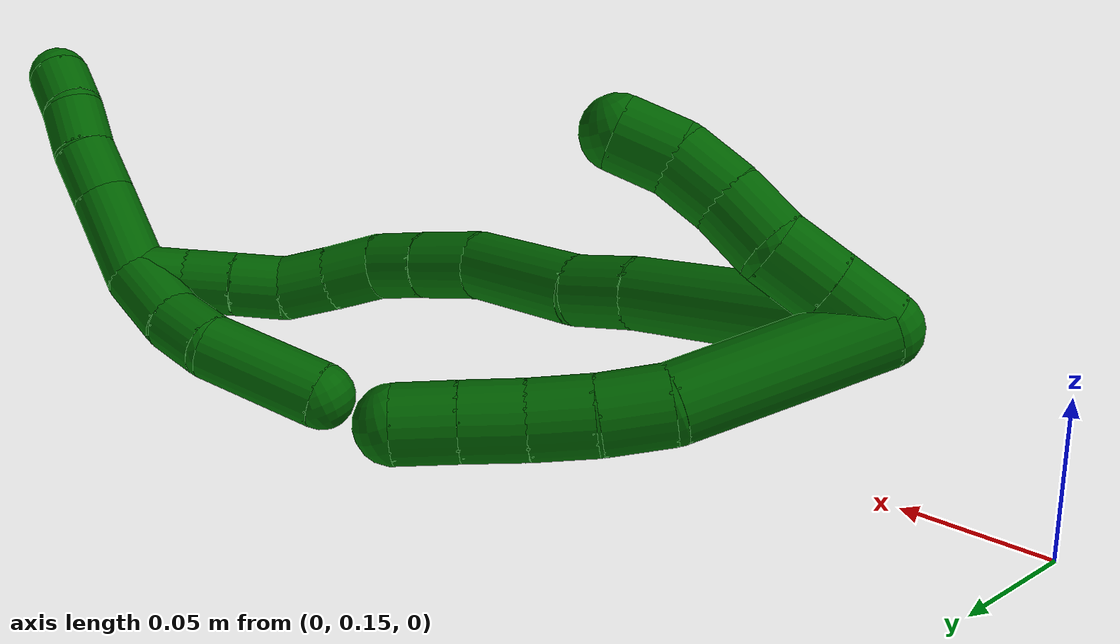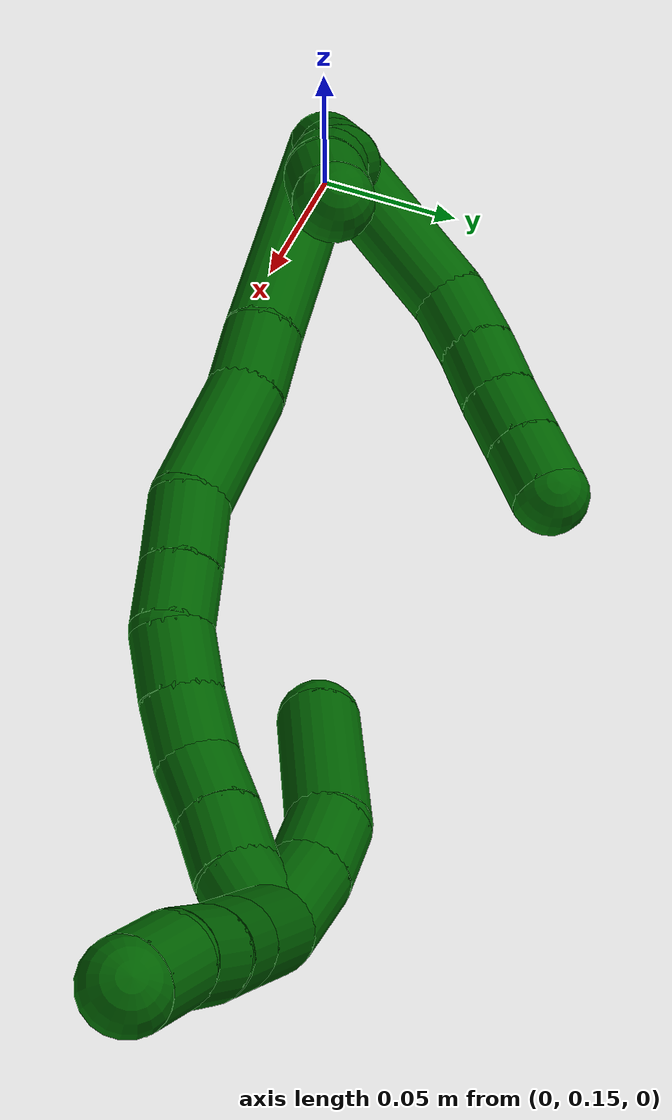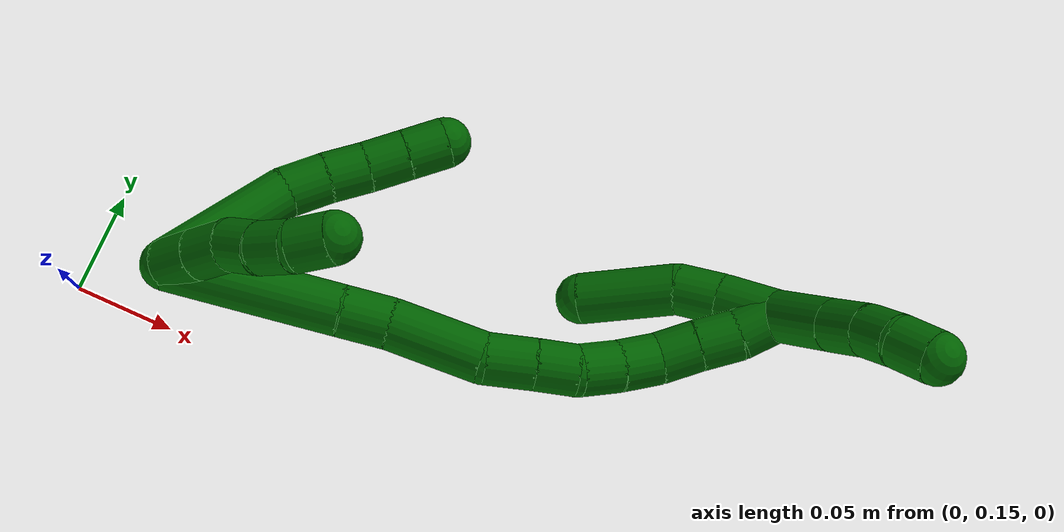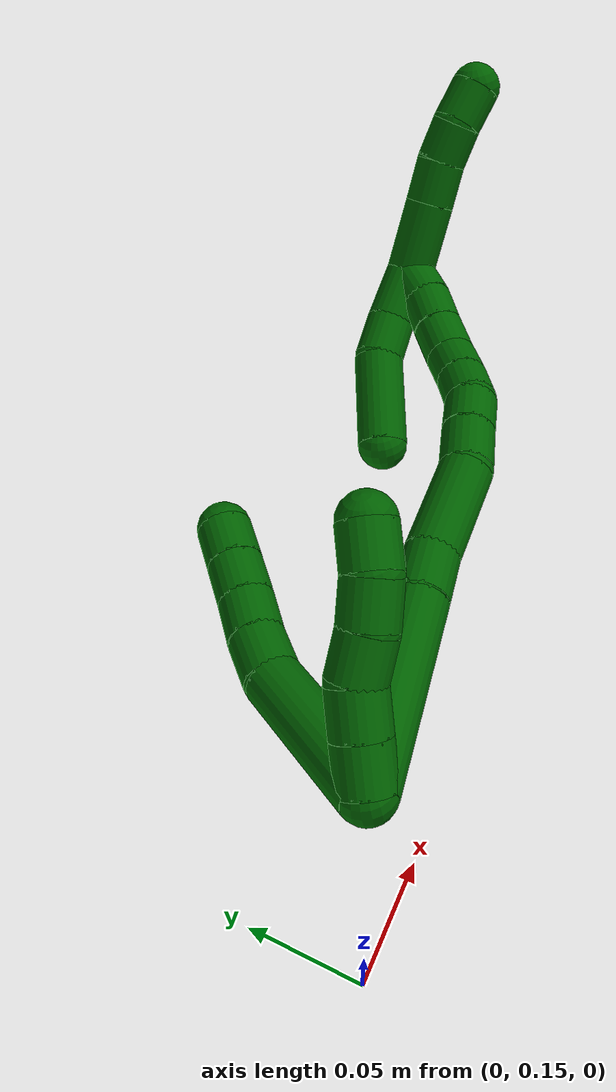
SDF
<sdf version="1.7">
 <world name="default">
  <model name="6">
   <static>0</static>
   <link name="6">
    <collision name="collision-cylinder-e_1_2_8">
     <pose>0.016515 0.029332 0.003978 -1.43599 0.508918 -0.446816</pose>
     <geometry><cylinder><radius>0.0125</radius><length>0.067792</length></cylinder></geometry>
     <surface>
      <friction><ode><mu>1.16</mu><mu2>1.16</mu2><slip1>0</slip1><slip2>0</slip2></ode></friction>
      <contact><ode><kp>1e+06</kp><kd>1</kd><max_vel>0</max_vel><min_depth>0.001</min_depth></ode></contact>
     </surface>
    </collision>
    <visual name="visual-cylinder-e_1_2_8">
     <pose>0.016515 0.029332 0.003978 -1.43599 0.508918 -0.446816</pose>
     <geometry><cylinder><radius>0.0125</radius><length>0.067792</length></cylinder></geometry>
     <material><ambient>0 0.392157 0.003922 1</ambient></material>
    </visual>
    <collision name="collision-cylinder-e_2_8_9">
     <pose>0.040237 0.066334 0.0105 -1.25066 0.728244 -0.53703</pose>
     <geometry><cylinder><radius>0.0125</radius><length>0.021655</length></cylinder></geometry>
     <surface>
      <friction><ode><mu>1.16</mu><mu2>1.16</mu2><slip1>0</slip1><slip2>0</slip2></ode></friction>
      <contact><ode><kp>1e+06</kp><kd>1</kd><max_vel>0</max_vel><min_depth>0.001</min_depth></ode></contact>
     </surface>
    </collision>
    <visual name="visual-cylinder-e_2_8_9">
     <pose>0.040237 0.066334 0.0105 -1.25066 0.728244 -0.53703</pose>
     <geometry><cylinder><radius>0.0125</radius><length>0.021655</length></cylinder></geometry>
     <material><ambient>0 0.392157 0.003922 1</ambient></material>
    </visual>
    <collision name="collision-cylinder-e_3_9_10">
     <pose>0.054715 0.080401 0.015904 -1.15019 0.803925 -0.537751</pose>
     <geometry><cylinder><radius>0.0125</radius><length>0.020198</length></cylinder></geometry>
     <surface>
      <friction><ode><mu>1.16</mu><mu2>1.16</mu2><slip1>0</slip1><slip2>0</slip2></ode></friction>
      <contact><ode><kp>1e+06</kp><kd>1</kd><max_vel>0</max_vel><min_depth>0.001</min_depth></ode></contact>
     </surface>
    </collision>
    <visual name="visual-cylinder-e_3_9_10">
     <pose>0.054715 0.080401 0.015904 -1.15019 0.803925 -0.537751</pose>
     <geometry><cylinder><radius>0.0125</radius><length>0.020198</length></cylinder></geometry>
     <material><ambient>0 0.392157 0.003922 1</ambient></material>
    </visual>
    <collision name="collision-cylinder-e_4_10_11">
     <pose>0.068933 0.093272 0.022172 -1.08643 0.75947 -0.472948</pose>
     <geometry><cylinder><radius>0.0125</radius><length>0.020176</length></cylinder></geometry>
     <surface>
      <friction><ode><mu>1.16</mu><mu2>1.16</mu2><slip1>0</slip1><slip2>0</slip2></ode></friction>
      <contact><ode><kp>1e+06</kp><kd>1</kd><max_vel>0</max_vel><min_depth>0.001</min_depth></ode></contact>
     </surface>
    </collision>
    <visual name="visual-cylinder-e_4_10_11">
     <pose>0.068933 0.093272 0.022172 -1.08643 0.75947 -0.472948</pose>
     <geometry><cylinder><radius>0.0125</radius><length>0.020176</length></cylinder></geometry>
     <material><ambient>0 0.392157 0.003922 1</ambient></material>
    </visual>
    <collision name="collision-cylinder-e_5_11_6">
     <pose>0.082853 0.106258 0.028861 -1.10396 0.763057 -0.484425</pose>
     <geometry><cylinder><radius>0.0125</radius><length>0.020179</length></cylinder></geometry>
     <surface>
      <friction><ode><mu>1.16</mu><mu2>1.16</mu2><slip1>0</slip1><slip2>0</slip2></ode></friction>
      <contact><ode><kp>1e+06</kp><kd>1</kd><max_vel>0</max_vel><min_depth>0.001</min_depth></ode></contact>
     </surface>
    </collision>
    <visual name="visual-cylinder-e_5_11_6">
     <pose>0.082853 0.106258 0.028861 -1.10396 0.763057 -0.484425</pose>
     <geometry><cylinder><radius>0.0125</radius><length>0.020179</length></cylinder></geometry>
     <material><ambient>0 0.392157 0.003922 1</ambient></material>
    </visual>
    <collision name="collision-cylinder-e_1_2_12">
     <pose>0.004969 0.002244 0.008383 -0.261567 0.520029 -0.069957</pose>
     <geometry><cylinder><radius>0.0125</radius><length>0.02</length></cylinder></geometry>
     <surface>
      <friction><ode><mu>1.16</mu><mu2>1.16</mu2><slip1>0</slip1><slip2>0</slip2></ode></friction>
      <contact><ode><kp>1e+06</kp><kd>1</kd><max_vel>0</max_vel><min_depth>0.001</min_depth></ode></contact>
     </surface>
    </collision>
    <visual name="visual-cylinder-e_1_2_12">
     <pose>0.004969 0.002244 0.008383 -0.261567 0.520029 -0.069957</pose>
     <geometry><cylinder><radius>0.0125</radius><length>0.02</length></cylinder></geometry>
     <material><ambient>0 0.392157 0.003922 1</ambient></material>
    </visual>
    <collision name="collision-cylinder-e_2_12_13">
     <pose>0.014969 0.006681 0.025125 -0.256542 0.527199 -0.06959</pose>
     <geometry><cylinder><radius>0.0125</radius><length>0.02</length></cylinder></geometry>
     <surface>
      <friction><ode><mu>1.16</mu><mu2>1.16</mu2><slip1>0</slip1><slip2>0</slip2></ode></friction>
      <contact><ode><kp>1e+06</kp><kd>1</kd><max_vel>0</max_vel><min_depth>0.001</min_depth></ode></contact>
     </surface>
    </collision>
    <visual name="visual-cylinder-e_2_12_13">
     <pose>0.014969 0.006681 0.025125 -0.256542 0.527199 -0.06959</pose>
     <geometry><cylinder><radius>0.0125</radius><length>0.02</length></cylinder></geometry>
     <material><ambient>0 0.392157 0.003922 1</ambient></material>
    </visual>
    <collision name="collision-cylinder-e_3_13_14">
     <pose>0.025843 0.00782 0.041532 0.130238 0.623944 0.042056</pose>
     <geometry><cylinder><radius>0.0125</radius><length>0.02</length></cylinder></geometry>
     <surface>
      <friction><ode><mu>1.16</mu><mu2>1.16</mu2><slip1>0</slip1><slip2>0</slip2></ode></friction>
      <contact><ode><kp>1e+06</kp><kd>1</kd><max_vel>0</max_vel><min_depth>0.001</min_depth></ode></contact>
     </surface>
    </collision>
    <visual name="visual-cylinder-e_3_13_14">
     <pose>0.025843 0.00782 0.041532 0.130238 0.623944 0.042056</pose>
     <geometry><cylinder><radius>0.0125</radius><length>0.02</length></cylinder></geometry>
     <material><ambient>0 0.392157 0.003922 1</ambient></material>
    </visual>
    <collision name="collision-cylinder-e_4_14_15">
     <pose>0.037621 0.007438 0.057598 -0.083598 0.635492 -0.027509</pose>
     <geometry><cylinder><radius>0.0125</radius><length>0.02</length></cylinder></geometry>
     <surface>
      <friction><ode><mu>1.16</mu><mu2>1.16</mu2><slip1>0</slip1><slip2>0</slip2></ode></friction>
      <contact><ode><kp>1e+06</kp><kd>1</kd><max_vel>0</max_vel><min_depth>0.001</min_depth></ode></contact>
     </surface>
    </collision>
    <visual name="visual-cylinder-e_4_14_15">
     <pose>0.037621 0.007438 0.057598 -0.083598 0.635492 -0.027509</pose>
     <geometry><cylinder><radius>0.0125</radius><length>0.02</length></cylinder></geometry>
     <material><ambient>0 0.392157 0.003922 1</ambient></material>
    </visual>
    <collision name="collision-cylinder-e_5_15_5">
     <pose>0.050081 0.011306 0.072489 -0.435375 0.710817 -0.163833</pose>
     <geometry><cylinder><radius>0.0125</radius><length>0.02</length></cylinder></geometry>
     <surface>
      <friction><ode><mu>1.16</mu><mu2>1.16</mu2><slip1>0</slip1><slip2>0</slip2></ode></friction>
      <contact><ode><kp>1e+06</kp><kd>1</kd><max_vel>0</max_vel><min_depth>0.001</min_depth></ode></contact>
     </surface>
    </collision>
    <visual name="visual-cylinder-e_5_15_5">
     <pose>0.050081 0.011306 0.072489 -0.435375 0.710817 -0.163833</pose>
     <geometry><cylinder><radius>0.0125</radius><length>0.02</length></cylinder></geometry>
     <material><ambient>0 0.392157 0.003922 1</ambient></material>
    </visual>
    <collision name="collision-cylinder-e_1_2_16">
     <pose>0.040136 0.00564 0.011433 -0.458243 1.26324 -0.337986</pose>
     <geometry><cylinder><radius>0.0125</radius><length>0.084224</length></cylinder></geometry>
     <surface>
      <friction><ode><mu>1.16</mu><mu2>1.16</mu2><slip1>0</slip1><slip2>0</slip2></ode></friction>
      <contact><ode><kp>1e+06</kp><kd>1</kd><max_vel>0</max_vel><min_depth>0.001</min_depth></ode></contact>
     </surface>
    </collision>
    <visual name="visual-cylinder-e_1_2_16">
     <pose>0.040136 0.00564 0.011433 -0.458243 1.26324 -0.337986</pose>
     <geometry><cylinder><radius>0.0125</radius><length>0.084224</length></cylinder></geometry>
     <material><ambient>0 0.392157 0.003922 1</ambient></material>
    </visual>
    <collision name="collision-cylinder-e_2_16_17">
     <pose>0.091794 0.013323 0.025217 -0.715939 1.3068 -0.557858</pose>
     <geometry><cylinder><radius>0.0125</radius><length>0.023871</length></cylinder></geometry>
     <surface>
      <friction><ode><mu>1.16</mu><mu2>1.16</mu2><slip1>0</slip1><slip2>0</slip2></ode></friction>
      <contact><ode><kp>1e+06</kp><kd>1</kd><max_vel>0</max_vel><min_depth>0.001</min_depth></ode></contact>
     </surface>
    </collision>
    <visual name="visual-cylinder-e_2_16_17">
     <pose>0.091794 0.013323 0.025217 -0.715939 1.3068 -0.557858</pose>
     <geometry><cylinder><radius>0.0125</radius><length>0.023871</length></cylinder></geometry>
     <material><ambient>0 0.392157 0.003922 1</ambient></material>
    </visual>
    <collision name="collision-cylinder-e_3_17_18">
     <pose>0.125489 0.015715 0.034524 -0.049959 1.26637 -0.036674</pose>
     <geometry><cylinder><radius>0.0125</radius><length>0.046485</length></cylinder></geometry>
     <surface>
      <friction><ode><mu>1.16</mu><mu2>1.16</mu2><slip1>0</slip1><slip2>0</slip2></ode></friction>
      <contact><ode><kp>1e+06</kp><kd>1</kd><max_vel>0</max_vel><min_depth>0.001</min_depth></ode></contact>
     </surface>
    </collision>
    <visual name="visual-cylinder-e_3_17_18">
     <pose>0.125489 0.015715 0.034524 -0.049959 1.26637 -0.036674</pose>
     <geometry><cylinder><radius>0.0125</radius><length>0.046485</length></cylinder></geometry>
     <material><ambient>0 0.392157 0.003922 1</ambient></material>
    </visual>
    <collision name="collision-cylinder-e_4_18_19">
     <pose>0.158789 0.019659 0.044237 -0.917166 1.18418 -0.641181</pose>
     <geometry><cylinder><radius>0.0125</radius><length>0.024026</length></cylinder></geometry>
     <surface>
      <friction><ode><mu>1.16</mu><mu2>1.16</mu2><slip1>0</slip1><slip2>0</slip2></ode></friction>
      <contact><ode><kp>1e+06</kp><kd>1</kd><max_vel>0</max_vel><min_depth>0.001</min_depth></ode></contact>
     </surface>
    </collision>
    <visual name="visual-cylinder-e_4_18_19">
     <pose>0.158789 0.019659 0.044237 -0.917166 1.18418 -0.641181</pose>
     <geometry><cylinder><radius>0.0125</radius><length>0.024026</length></cylinder></geometry>
     <material><ambient>0 0.392157 0.003922 1</ambient></material>
    </visual>
    <collision name="collision-cylinder-e_5_19_20">
     <pose>0.179428 0.026154 0.049052 -0.952907 1.213 -0.687636</pose>
     <geometry><cylinder><radius>0.0125</radius><length>0.020312</length></cylinder></geometry>
     <surface>
      <friction><ode><mu>1.16</mu><mu2>1.16</mu2><slip1>0</slip1><slip2>0</slip2></ode></friction>
      <contact><ode><kp>1e+06</kp><kd>1</kd><max_vel>0</max_vel><min_depth>0.001</min_depth></ode></contact>
     </surface>
    </collision>
    <visual name="visual-cylinder-e_5_19_20">
     <pose>0.179428 0.026154 0.049052 -0.952907 1.213 -0.687636</pose>
     <geometry><cylinder><radius>0.0125</radius><length>0.020312</length></cylinder></geometry>
     <material><ambient>0 0.392157 0.003922 1</ambient></material>
    </visual>
    <collision name="collision-cylinder-e_6_20_21">
     <pose>0.197421 0.034722 0.052058 -1.40547 0.975194 -0.8443</pose>
     <geometry><cylinder><radius>0.0125</radius><length>0.020488</length></cylinder></geometry>
     <surface>
      <friction><ode><mu>1.16</mu><mu2>1.16</mu2><slip1>0</slip1><slip2>0</slip2></ode></friction>
      <contact><ode><kp>1e+06</kp><kd>1</kd><max_vel>0</max_vel><min_depth>0.001</min_depth></ode></contact>
     </surface>
    </collision>
    <visual name="visual-cylinder-e_6_20_21">
     <pose>0.197421 0.034722 0.052058 -1.40547 0.975194 -0.8443</pose>
     <geometry><cylinder><radius>0.0125</radius><length>0.020488</length></cylinder></geometry>
     <material><ambient>0 0.392157 0.003922 1</ambient></material>
    </visual>
    <collision name="collision-cylinder-e_7_21_22">
     <pose>0.213862 0.046547 0.054406 -1.34679 0.900253 -0.735896</pose>
     <geometry><cylinder><radius>0.0125</radius><length>0.020323</length></cylinder></geometry>
     <surface>
      <friction><ode><mu>1.16</mu><mu2>1.16</mu2><slip1>0</slip1><slip2>0</slip2></ode></friction>
      <contact><ode><kp>1e+06</kp><kd>1</kd><max_vel>0</max_vel><min_depth>0.001</min_depth></ode></contact>
     </surface>
    </collision>
    <visual name="visual-cylinder-e_7_21_22">
     <pose>0.213862 0.046547 0.054406 -1.34679 0.900253 -0.735896</pose>
     <geometry><cylinder><radius>0.0125</radius><length>0.020323</length></cylinder></geometry>
     <material><ambient>0 0.392157 0.003922 1</ambient></material>
    </visual>
    <collision name="collision-cylinder-e_8_22_23">
     <pose>0.228605 0.058669 0.060231 -0.93292 0.740157 -0.385827</pose>
     <geometry><cylinder><radius>0.0125</radius><length>0.020112</length></cylinder></geometry>
     <surface>
      <friction><ode><mu>1.16</mu><mu2>1.16</mu2><slip1>0</slip1><slip2>0</slip2></ode></friction>
      <contact><ode><kp>1e+06</kp><kd>1</kd><max_vel>0</max_vel><min_depth>0.001</min_depth></ode></contact>
     </surface>
    </collision>
    <visual name="visual-cylinder-e_8_22_23">
     <pose>0.228605 0.058669 0.060231 -0.93292 0.740157 -0.385827</pose>
     <geometry><cylinder><radius>0.0125</radius><length>0.020112</length></cylinder></geometry>
     <material><ambient>0 0.392157 0.003922 1</ambient></material>
    </visual>
    <collision name="collision-cylinder-e_9_23_24">
     <pose>0.242506 0.070298 0.068892 -0.928256 0.788458 -0.410638</pose>
     <geometry><cylinder><radius>0.0125</radius><length>0.020073</length></cylinder></geometry>
     <surface>
      <friction><ode><mu>1.16</mu><mu2>1.16</mu2><slip1>0</slip1><slip2>0</slip2></ode></friction>
      <contact><ode><kp>1e+06</kp><kd>1</kd><max_vel>0</max_vel><min_depth>0.001</min_depth></ode></contact>
     </surface>
    </collision>
    <visual name="visual-cylinder-e_9_23_24">
     <pose>0.242506 0.070298 0.068892 -0.928256 0.788458 -0.410638</pose>
     <geometry><cylinder><radius>0.0125</radius><length>0.020073</length></cylinder></geometry>
     <material><ambient>0 0.392157 0.003922 1</ambient></material>
    </visual>
    <collision name="collision-cylinder-e_10_24_1">
     <pose>0.255264 0.082749 0.077927 -0.955597 0.59625 -0.315587</pose>
     <geometry><cylinder><radius>0.0125</radius><length>0.020087</length></cylinder></geometry>
     <surface>
      <friction><ode><mu>1.16</mu><mu2>1.16</mu2><slip1>0</slip1><slip2>0</slip2></ode></friction>
      <contact><ode><kp>1e+06</kp><kd>1</kd><max_vel>0</max_vel><min_depth>0.001</min_depth></ode></contact>
     </surface>
    </collision>
    <visual name="visual-cylinder-e_10_24_1">
     <pose>0.255264 0.082749 0.077927 -0.955597 0.59625 -0.315587</pose>
     <geometry><cylinder><radius>0.0125</radius><length>0.020087</length></cylinder></geometry>
     <material><ambient>0 0.392157 0.003922 1</ambient></material>
    </visual>
    <collision name="collision-cylinder-e_1_1_25">
     <pose>0.249994 0.091622 0.073389 -2.92171 -0.851018 2.66375</pose>
     <geometry><cylinder><radius>0.0125</radius><length>0.029018</length></cylinder></geometry>
     <surface>
      <friction><ode><mu>1.16</mu><mu2>1.16</mu2><slip1>0</slip1><slip2>0</slip2></ode></friction>
      <contact><ode><kp>1e+06</kp><kd>1</kd><max_vel>0</max_vel><min_depth>0.001</min_depth></ode></contact>
     </surface>
    </collision>
    <visual name="visual-cylinder-e_1_1_25">
     <pose>0.249994 0.091622 0.073389 -2.92171 -0.851018 2.66375</pose>
     <geometry><cylinder><radius>0.0125</radius><length>0.029018</length></cylinder></geometry>
     <material><ambient>0 0.392157 0.003922 1</ambient></material>
    </visual>
    <collision name="collision-cylinder-e_2_25_26">
     <pose>0.229525 0.093693 0.057957 3.13908 -1.00297 -3.13701</pose>
     <geometry><cylinder><radius>0.0125</radius><length>0.022676</length></cylinder></geometry>
     <surface>
      <friction><ode><mu>1.16</mu><mu2>1.16</mu2><slip1>0</slip1><slip2>0</slip2></ode></friction>
      <contact><ode><kp>1e+06</kp><kd>1</kd><max_vel>0</max_vel><min_depth>0.001</min_depth></ode></contact>
     </surface>
    </collision>
    <visual name="visual-cylinder-e_2_25_26">
     <pose>0.229525 0.093693 0.057957 3.13908 -1.00297 -3.13701</pose>
     <geometry><cylinder><radius>0.0125</radius><length>0.022676</length></cylinder></geometry>
     <material><ambient>0 0.392157 0.003922 1</ambient></material>
    </visual>
    <collision name="collision-cylinder-e_3_26_4">
     <pose>0.202272 0.08643 0.037103 2.68508 -0.822103 -2.16226</pose>
     <geometry><cylinder><radius>0.0125</radius><length>0.048306</length></cylinder></geometry>
     <surface>
      <friction><ode><mu>1.16</mu><mu2>1.16</mu2><slip1>0</slip1><slip2>0</slip2></ode></friction>
      <contact><ode><kp>1e+06</kp><kd>1</kd><max_vel>0</max_vel><min_depth>0.001</min_depth></ode></contact>
     </surface>
    </collision>
    <visual name="visual-cylinder-e_3_26_4">
     <pose>0.202272 0.08643 0.037103 2.68508 -0.822103 -2.16226</pose>
     <geometry><cylinder><radius>0.0125</radius><length>0.048306</length></cylinder></geometry>
     <material><ambient>0 0.392157 0.003922 1</ambient></material>
    </visual>
    <collision name="collision-cylinder-e_1_1_27">
     <pose>0.268568 0.084962 0.099033 0.273414 0.424904 0.05933</pose>
     <geometry><cylinder><radius>0.0125</radius><length>0.037183</length></cylinder></geometry>
     <surface>
      <friction><ode><mu>1.16</mu><mu2>1.16</mu2><slip1>0</slip1><slip2>0</slip2></ode></friction>
      <contact><ode><kp>1e+06</kp><kd>1</kd><max_vel>0</max_vel><min_depth>0.001</min_depth></ode></contact>
     </surface>
    </collision>
    <visual name="visual-cylinder-e_1_1_27">
     <pose>0.268568 0.084962 0.099033 0.273414 0.424904 0.05933</pose>
     <geometry><cylinder><radius>0.0125</radius><length>0.037183</length></cylinder></geometry>
     <material><ambient>0 0.392157 0.003922 1</ambient></material>
    </visual>
    <collision name="collision-cylinder-e_2_27_28">
     <pose>0.280726 0.077784 0.125014 0.26304 0.421758 0.056619</pose>
     <geometry><cylinder><radius>0.0125</radius><length>0.021957</length></cylinder></geometry>
     <surface>
      <friction><ode><mu>1.16</mu><mu2>1.16</mu2><slip1>0</slip1><slip2>0</slip2></ode></friction>
      <contact><ode><kp>1e+06</kp><kd>1</kd><max_vel>0</max_vel><min_depth>0.001</min_depth></ode></contact>
     </surface>
    </collision>
    <visual name="visual-cylinder-e_2_27_28">
     <pose>0.280726 0.077784 0.125014 0.26304 0.421758 0.056619</pose>
     <geometry><cylinder><radius>0.0125</radius><length>0.021957</length></cylinder></geometry>
     <material><ambient>0 0.392157 0.003922 1</ambient></material>
    </visual>
    <collision name="collision-cylinder-e_3_28_29">
     <pose>0.289367 0.071507 0.143135 0.410086 0.422885 0.089221</pose>
     <geometry><cylinder><radius>0.0125</radius><length>0.020204</length></cylinder></geometry>
     <surface>
      <friction><ode><mu>1.16</mu><mu2>1.16</mu2><slip1>0</slip1><slip2>0</slip2></ode></friction>
      <contact><ode><kp>1e+06</kp><kd>1</kd><max_vel>0</max_vel><min_depth>0.001</min_depth></ode></contact>
     </surface>
    </collision>
    <visual name="visual-cylinder-e_3_28_29">
     <pose>0.289367 0.071507 0.143135 0.410086 0.422885 0.089221</pose>
     <geometry><cylinder><radius>0.0125</radius><length>0.020204</length></cylinder></geometry>
     <material><ambient>0 0.392157 0.003922 1</ambient></material>
    </visual>
    <collision name="collision-cylinder-e_4_29_3">
     <pose>0.299886 0.064321 0.158911 0.447038 0.665097 0.156698</pose>
     <geometry><cylinder><radius>0.0125</radius><length>0.020655</length></cylinder></geometry>
     <surface>
      <friction><ode><mu>1.16</mu><mu2>1.16</mu2><slip1>0</slip1><slip2>0</slip2></ode></friction>
      <contact><ode><kp>1e+06</kp><kd>1</kd><max_vel>0</max_vel><min_depth>0.001</min_depth></ode></contact>
     </surface>
    </collision>
    <visual name="visual-cylinder-e_4_29_3">
     <pose>0.299886 0.064321 0.158911 0.447038 0.665097 0.156698</pose>
     <geometry><cylinder><radius>0.0125</radius><length>0.020655</length></cylinder></geometry>
     <material><ambient>0 0.392157 0.003922 1</ambient></material>
    </visual>
    <collision name="collision-sphere-3">
     <pose>0.306259 0.060808 0.166239 0 -0 0</pose>
     <geometry><sphere><radius>0.0125</radius></sphere></geometry>
     <surface>
      <friction><ode><mu>1.16</mu><mu2>1.16</mu2><slip1>0</slip1><slip2>0</slip2></ode></friction>
      <contact><ode><kp>1e+06</kp><kd>1</kd><max_vel>0</max_vel><min_depth>0.001</min_depth></ode></contact>
     </surface>
    </collision>
    <visual name="visual-sphere-3">
     <pose>0.306259 0.060808 0.166239 0 -0 0</pose>
     <geometry><sphere><radius>0.0125</radius></sphere></geometry>
     <material><ambient>0 0.392157 0.003922 1</ambient></material>
    </visual>
    <collision name="collision-sphere-29">
     <pose>0.293512 0.067834 0.151583 0 -0 0</pose>
     <geometry><sphere><radius>0.0125</radius></sphere></geometry>
     <surface>
      <friction><ode><mu>1.16</mu><mu2>1.16</mu2><slip1>0</slip1><slip2>0</slip2></ode></friction>
      <contact><ode><kp>1e+06</kp><kd>1</kd><max_vel>0</max_vel><min_depth>0.001</min_depth></ode></contact>
     </surface>
    </collision>
    <visual name="visual-sphere-29">
     <pose>0.293512 0.067834 0.151583 0 -0 0</pose>
     <geometry><sphere><radius>0.0125</radius></sphere></geometry>
     <material><ambient>0 0.392157 0.003922 1</ambient></material>
    </visual>
    <collision name="collision-sphere-28">
     <pose>0.285221 0.07518 0.134686 0 -0 0</pose>
     <geometry><sphere><radius>0.0125</radius></sphere></geometry>
     <surface>
      <friction><ode><mu>1.16</mu><mu2>1.16</mu2><slip1>0</slip1><slip2>0</slip2></ode></friction>
      <contact><ode><kp>1e+06</kp><kd>1</kd><max_vel>0</max_vel><min_depth>0.001</min_depth></ode></contact>
     </surface>
    </collision>
    <visual name="visual-sphere-28">
     <pose>0.285221 0.07518 0.134686 0 -0 0</pose>
     <geometry><sphere><radius>0.0125</radius></sphere></geometry>
     <material><ambient>0 0.392157 0.003922 1</ambient></material>
    </visual>
    <collision name="collision-sphere-27">
     <pose>0.276232 0.080389 0.115342 0 -0 0</pose>
     <geometry><sphere><radius>0.0125</radius></sphere></geometry>
     <surface>
      <friction><ode><mu>1.16</mu><mu2>1.16</mu2><slip1>0</slip1><slip2>0</slip2></ode></friction>
      <contact><ode><kp>1e+06</kp><kd>1</kd><max_vel>0</max_vel><min_depth>0.001</min_depth></ode></contact>
     </surface>
    </collision>
    <visual name="visual-sphere-27">
     <pose>0.276232 0.080389 0.115342 0 -0 0</pose>
     <geometry><sphere><radius>0.0125</radius></sphere></geometry>
     <material><ambient>0 0.392157 0.003922 1</ambient></material>
    </visual>
    <collision name="collision-sphere-4">
     <pose>0.184578 0.079183 0.022346 0 -0 0</pose>
     <geometry><sphere><radius>0.0125</radius></sphere></geometry>
     <surface>
      <friction><ode><mu>1.16</mu><mu2>1.16</mu2><slip1>0</slip1><slip2>0</slip2></ode></friction>
      <contact><ode><kp>1e+06</kp><kd>1</kd><max_vel>0</max_vel><min_depth>0.001</min_depth></ode></contact>
     </surface>
    </collision>
    <visual name="visual-sphere-4">
     <pose>0.184578 0.079183 0.022346 0 -0 0</pose>
     <geometry><sphere><radius>0.0125</radius></sphere></geometry>
     <material><ambient>0 0.392157 0.003922 1</ambient></material>
    </visual>
    <collision name="collision-sphere-26">
     <pose>0.219966 0.093678 0.05186 0 -0 0</pose>
     <geometry><sphere><radius>0.0125</radius></sphere></geometry>
     <surface>
      <friction><ode><mu>1.16</mu><mu2>1.16</mu2><slip1>0</slip1><slip2>0</slip2></ode></friction>
      <contact><ode><kp>1e+06</kp><kd>1</kd><max_vel>0</max_vel><min_depth>0.001</min_depth></ode></contact>
     </surface>
    </collision>
    <visual name="visual-sphere-26">
     <pose>0.219966 0.093678 0.05186 0 -0 0</pose>
     <geometry><sphere><radius>0.0125</radius></sphere></geometry>
     <material><ambient>0 0.392157 0.003922 1</ambient></material>
    </visual>
    <collision name="collision-sphere-25">
     <pose>0.239084 0.093708 0.064055 0 -0 0</pose>
     <geometry><sphere><radius>0.0125</radius></sphere></geometry>
     <surface>
      <friction><ode><mu>1.16</mu><mu2>1.16</mu2><slip1>0</slip1><slip2>0</slip2></ode></friction>
      <contact><ode><kp>1e+06</kp><kd>1</kd><max_vel>0</max_vel><min_depth>0.001</min_depth></ode></contact>
     </surface>
    </collision>
    <visual name="visual-sphere-25">
     <pose>0.239084 0.093708 0.064055 0 -0 0</pose>
     <geometry><sphere><radius>0.0125</radius></sphere></geometry>
     <material><ambient>0 0.392157 0.003922 1</ambient></material>
    </visual>
    <collision name="collision-sphere-1">
     <pose>0.260904 0.089536 0.082724 0 -0 0</pose>
     <geometry><sphere><radius>0.0125</radius></sphere></geometry>
     <surface>
      <friction><ode><mu>1.16</mu><mu2>1.16</mu2><slip1>0</slip1><slip2>0</slip2></ode></friction>
      <contact><ode><kp>1e+06</kp><kd>1</kd><max_vel>0</max_vel><min_depth>0.001</min_depth></ode></contact>
     </surface>
    </collision>
    <visual name="visual-sphere-1">
     <pose>0.260904 0.089536 0.082724 0 -0 0</pose>
     <geometry><sphere><radius>0.0125</radius></sphere></geometry>
     <material><ambient>0 0.392157 0.003922 1</ambient></material>
    </visual>
    <collision name="collision-sphere-24">
     <pose>0.249624 0.075962 0.073131 0 -0 0</pose>
     <geometry><sphere><radius>0.0125</radius></sphere></geometry>
     <surface>
      <friction><ode><mu>1.16</mu><mu2>1.16</mu2><slip1>0</slip1><slip2>0</slip2></ode></friction>
      <contact><ode><kp>1e+06</kp><kd>1</kd><max_vel>0</max_vel><min_depth>0.001</min_depth></ode></contact>
     </surface>
    </collision>
    <visual name="visual-sphere-24">
     <pose>0.249624 0.075962 0.073131 0 -0 0</pose>
     <geometry><sphere><radius>0.0125</radius></sphere></geometry>
     <material><ambient>0 0.392157 0.003922 1</ambient></material>
    </visual>
    <collision name="collision-sphere-23">
     <pose>0.235387 0.064634 0.064652 0 -0 0</pose>
     <geometry><sphere><radius>0.0125</radius></sphere></geometry>
     <surface>
      <friction><ode><mu>1.16</mu><mu2>1.16</mu2><slip1>0</slip1><slip2>0</slip2></ode></friction>
      <contact><ode><kp>1e+06</kp><kd>1</kd><max_vel>0</max_vel><min_depth>0.001</min_depth></ode></contact>
     </surface>
    </collision>
    <visual name="visual-sphere-23">
     <pose>0.235387 0.064634 0.064652 0 -0 0</pose>
     <geometry><sphere><radius>0.0125</radius></sphere></geometry>
     <material><ambient>0 0.392157 0.003922 1</ambient></material>
    </visual>
    <collision name="collision-sphere-22">
     <pose>0.221823 0.052704 0.055809 0 -0 0</pose>
     <geometry><sphere><radius>0.0125</radius></sphere></geometry>
     <surface>
      <friction><ode><mu>1.16</mu><mu2>1.16</mu2><slip1>0</slip1><slip2>0</slip2></ode></friction>
      <contact><ode><kp>1e+06</kp><kd>1</kd><max_vel>0</max_vel><min_depth>0.001</min_depth></ode></contact>
     </surface>
    </collision>
    <visual name="visual-sphere-22">
     <pose>0.221823 0.052704 0.055809 0 -0 0</pose>
     <geometry><sphere><radius>0.0125</radius></sphere></geometry>
     <material><ambient>0 0.392157 0.003922 1</ambient></material>
    </visual>
    <collision name="collision-sphere-21">
     <pose>0.205901 0.040391 0.053004 0 -0 0</pose>
     <geometry><sphere><radius>0.0125</radius></sphere></geometry>
     <surface>
      <friction><ode><mu>1.16</mu><mu2>1.16</mu2><slip1>0</slip1><slip2>0</slip2></ode></friction>
      <contact><ode><kp>1e+06</kp><kd>1</kd><max_vel>0</max_vel><min_depth>0.001</min_depth></ode></contact>
     </surface>
    </collision>
    <visual name="visual-sphere-21">
     <pose>0.205901 0.040391 0.053004 0 -0 0</pose>
     <geometry><sphere><radius>0.0125</radius></sphere></geometry>
     <material><ambient>0 0.392157 0.003922 1</ambient></material>
    </visual>
    <collision name="collision-sphere-6">
     <pose>0.089826 0.11277 0.032143 0 -0 0</pose>
     <geometry><sphere><radius>0.0125</radius></sphere></geometry>
     <surface>
      <friction><ode><mu>1.16</mu><mu2>1.16</mu2><slip1>0</slip1><slip2>0</slip2></ode></friction>
      <contact><ode><kp>1e+06</kp><kd>1</kd><max_vel>0</max_vel><min_depth>0.001</min_depth></ode></contact>
     </surface>
    </collision>
    <visual name="visual-sphere-6">
     <pose>0.089826 0.11277 0.032143 0 -0 0</pose>
     <geometry><sphere><radius>0.0125</radius></sphere></geometry>
     <material><ambient>0 0.392157 0.003922 1</ambient></material>
    </visual>
    <collision name="collision-sphere-11">
     <pose>0.07588 0.099747 0.025579 0 -0 0</pose>
     <geometry><sphere><radius>0.0125</radius></sphere></geometry>
     <surface>
      <friction><ode><mu>1.16</mu><mu2>1.16</mu2><slip1>0</slip1><slip2>0</slip2></ode></friction>
      <contact><ode><kp>1e+06</kp><kd>1</kd><max_vel>0</max_vel><min_depth>0.001</min_depth></ode></contact>
     </surface>
    </collision>
    <visual name="visual-sphere-11">
     <pose>0.07588 0.099747 0.025579 0 -0 0</pose>
     <geometry><sphere><radius>0.0125</radius></sphere></geometry>
     <material><ambient>0 0.392157 0.003922 1</ambient></material>
    </visual>
    <collision name="collision-sphere-10">
     <pose>0.061987 0.086798 0.018765 0 -0 0</pose>
     <geometry><sphere><radius>0.0125</radius></sphere></geometry>
     <surface>
      <friction><ode><mu>1.16</mu><mu2>1.16</mu2><slip1>0</slip1><slip2>0</slip2></ode></friction>
      <contact><ode><kp>1e+06</kp><kd>1</kd><max_vel>0</max_vel><min_depth>0.001</min_depth></ode></contact>
     </surface>
    </collision>
    <visual name="visual-sphere-10">
     <pose>0.061987 0.086798 0.018765 0 -0 0</pose>
     <geometry><sphere><radius>0.0125</radius></sphere></geometry>
     <material><ambient>0 0.392157 0.003922 1</ambient></material>
    </visual>
    <collision name="collision-sphere-9">
     <pose>0.047443 0.074004 0.013043 0 -0 0</pose>
     <geometry><sphere><radius>0.0125</radius></sphere></geometry>
     <surface>
      <friction><ode><mu>1.16</mu><mu2>1.16</mu2><slip1>0</slip1><slip2>0</slip2></ode></friction>
      <contact><ode><kp>1e+06</kp><kd>1</kd><max_vel>0</max_vel><min_depth>0.001</min_depth></ode></contact>
     </surface>
    </collision>
    <visual name="visual-sphere-9">
     <pose>0.047443 0.074004 0.013043 0 -0 0</pose>
     <geometry><sphere><radius>0.0125</radius></sphere></geometry>
     <material><ambient>0 0.392157 0.003922 1</ambient></material>
    </visual>
    <collision name="collision-sphere-2">
     <geometry><sphere><radius>0.0125</radius></sphere></geometry>
     <surface>
      <friction><ode><mu>1.16</mu><mu2>1.16</mu2><slip1>0</slip1><slip2>0</slip2></ode></friction>
      <contact><ode><kp>1e+06</kp><kd>1</kd><max_vel>0</max_vel><min_depth>0.001</min_depth></ode></contact>
     </surface>
    </collision>
    <visual name="visual-sphere-2">
     <geometry><sphere><radius>0.0125</radius></sphere></geometry>
     <material><ambient>0 0.392157 0.003922 1</ambient></material>
    </visual>
    <collision name="collision-sphere-19">
     <pose>0.169915 0.023255 0.046991 0 -0 0</pose>
     <geometry><sphere><radius>0.0125</radius></sphere></geometry>
     <surface>
      <friction><ode><mu>1.16</mu><mu2>1.16</mu2><slip1>0</slip1><slip2>0</slip2></ode></friction>
      <contact><ode><kp>1e+06</kp><kd>1</kd><max_vel>0</max_vel><min_depth>0.001</min_depth></ode></contact>
     </surface>
    </collision>
    <visual name="visual-sphere-19">
     <pose>0.169915 0.023255 0.046991 0 -0 0</pose>
     <geometry><sphere><radius>0.0125</radius></sphere></geometry>
     <material><ambient>0 0.392157 0.003922 1</ambient></material>
    </visual>
    <collision name="collision-sphere-8">
     <pose>0.03303 0.058663 0.007957 0 -0 0</pose>
     <geometry><sphere><radius>0.0125</radius></sphere></geometry>
     <surface>
      <friction><ode><mu>1.16</mu><mu2>1.16</mu2><slip1>0</slip1><slip2>0</slip2></ode></friction>
      <contact><ode><kp>1e+06</kp><kd>1</kd><max_vel>0</max_vel><min_depth>0.001</min_depth></ode></contact>
     </surface>
    </collision>
    <visual name="visual-sphere-8">
     <pose>0.03303 0.058663 0.007957 0 -0 0</pose>
     <geometry><sphere><radius>0.0125</radius></sphere></geometry>
     <material><ambient>0 0.392157 0.003922 1</ambient></material>
    </visual>
    <collision name="collision-sphere-12">
     <pose>0.009938 0.004488 0.016766 0 -0 0</pose>
     <geometry><sphere><radius>0.0125</radius></sphere></geometry>
     <surface>
      <friction><ode><mu>1.16</mu><mu2>1.16</mu2><slip1>0</slip1><slip2>0</slip2></ode></friction>
      <contact><ode><kp>1e+06</kp><kd>1</kd><max_vel>0</max_vel><min_depth>0.001</min_depth></ode></contact>
     </surface>
    </collision>
    <visual name="visual-sphere-12">
     <pose>0.009938 0.004488 0.016766 0 -0 0</pose>
     <geometry><sphere><radius>0.0125</radius></sphere></geometry>
     <material><ambient>0 0.392157 0.003922 1</ambient></material>
    </visual>
    <collision name="collision-sphere-13">
     <pose>0.02 0.008874 0.033484 0 -0 0</pose>
     <geometry><sphere><radius>0.0125</radius></sphere></geometry>
     <surface>
      <friction><ode><mu>1.16</mu><mu2>1.16</mu2><slip1>0</slip1><slip2>0</slip2></ode></friction>
      <contact><ode><kp>1e+06</kp><kd>1</kd><max_vel>0</max_vel><min_depth>0.001</min_depth></ode></contact>
     </surface>
    </collision>
    <visual name="visual-sphere-13">
     <pose>0.02 0.008874 0.033484 0 -0 0</pose>
     <geometry><sphere><radius>0.0125</radius></sphere></geometry>
     <material><ambient>0 0.392157 0.003922 1</ambient></material>
    </visual>
    <collision name="collision-sphere-14">
     <pose>0.031685 0.006766 0.049579 0 -0 0</pose>
     <geometry><sphere><radius>0.0125</radius></sphere></geometry>
     <surface>
      <friction><ode><mu>1.16</mu><mu2>1.16</mu2><slip1>0</slip1><slip2>0</slip2></ode></friction>
      <contact><ode><kp>1e+06</kp><kd>1</kd><max_vel>0</max_vel><min_depth>0.001</min_depth></ode></contact>
     </surface>
    </collision>
    <visual name="visual-sphere-14">
     <pose>0.031685 0.006766 0.049579 0 -0 0</pose>
     <geometry><sphere><radius>0.0125</radius></sphere></geometry>
     <material><ambient>0 0.392157 0.003922 1</ambient></material>
    </visual>
    <collision name="collision-sphere-15">
     <pose>0.043557 0.00811 0.065618 0 -0 0</pose>
     <geometry><sphere><radius>0.0125</radius></sphere></geometry>
     <surface>
      <friction><ode><mu>1.16</mu><mu2>1.16</mu2><slip1>0</slip1><slip2>0</slip2></ode></friction>
      <contact><ode><kp>1e+06</kp><kd>1</kd><max_vel>0</max_vel><min_depth>0.001</min_depth></ode></contact>
     </surface>
    </collision>
    <visual name="visual-sphere-15">
     <pose>0.043557 0.00811 0.065618 0 -0 0</pose>
     <geometry><sphere><radius>0.0125</radius></sphere></geometry>
     <material><ambient>0 0.392157 0.003922 1</ambient></material>
    </visual>
    <collision name="collision-sphere-5">
     <pose>0.056606 0.014502 0.079361 0 -0 0</pose>
     <geometry><sphere><radius>0.0125</radius></sphere></geometry>
     <surface>
      <friction><ode><mu>1.16</mu><mu2>1.16</mu2><slip1>0</slip1><slip2>0</slip2></ode></friction>
      <contact><ode><kp>1e+06</kp><kd>1</kd><max_vel>0</max_vel><min_depth>0.001</min_depth></ode></contact>
     </surface>
    </collision>
    <visual name="visual-sphere-5">
     <pose>0.056606 0.014502 0.079361 0 -0 0</pose>
     <geometry><sphere><radius>0.0125</radius></sphere></geometry>
     <material><ambient>0 0.392157 0.003922 1</ambient></material>
    </visual>
    <collision name="collision-sphere-16">
     <pose>0.080272 0.011279 0.022867 0 -0 0</pose>
     <geometry><sphere><radius>0.0125</radius></sphere></geometry>
     <surface>
      <friction><ode><mu>1.16</mu><mu2>1.16</mu2><slip1>0</slip1><slip2>0</slip2></ode></friction>
      <contact><ode><kp>1e+06</kp><kd>1</kd><max_vel>0</max_vel><min_depth>0.001</min_depth></ode></contact>
     </surface>
    </collision>
    <visual name="visual-sphere-16">
     <pose>0.080272 0.011279 0.022867 0 -0 0</pose>
     <geometry><sphere><radius>0.0125</radius></sphere></geometry>
     <material><ambient>0 0.392157 0.003922 1</ambient></material>
    </visual>
    <collision name="collision-sphere-17">
     <pose>0.103315 0.015367 0.027566 0 -0 0</pose>
     <geometry><sphere><radius>0.0125</radius></sphere></geometry>
     <surface>
      <friction><ode><mu>1.16</mu><mu2>1.16</mu2><slip1>0</slip1><slip2>0</slip2></ode></friction>
      <contact><ode><kp>1e+06</kp><kd>1</kd><max_vel>0</max_vel><min_depth>0.001</min_depth></ode></contact>
     </surface>
    </collision>
    <visual name="visual-sphere-17">
     <pose>0.103315 0.015367 0.027566 0 -0 0</pose>
     <geometry><sphere><radius>0.0125</radius></sphere></geometry>
     <material><ambient>0 0.392157 0.003922 1</ambient></material>
    </visual>
    <collision name="collision-sphere-18">
     <pose>0.147663 0.016063 0.041482 0 -0 0</pose>
     <geometry><sphere><radius>0.0125</radius></sphere></geometry>
     <surface>
      <friction><ode><mu>1.16</mu><mu2>1.16</mu2><slip1>0</slip1><slip2>0</slip2></ode></friction>
      <contact><ode><kp>1e+06</kp><kd>1</kd><max_vel>0</max_vel><min_depth>0.001</min_depth></ode></contact>
     </surface>
    </collision>
    <visual name="visual-sphere-18">
     <pose>0.147663 0.016063 0.041482 0 -0 0</pose>
     <geometry><sphere><radius>0.0125</radius></sphere></geometry>
     <material><ambient>0 0.392157 0.003922 1</ambient></material>
    </visual>
    <collision name="collision-sphere-20">
     <pose>0.18894 0.029053 0.051112 0 -0 0</pose>
     <geometry><sphere><radius>0.0125</radius></sphere></geometry>
     <surface>
      <friction><ode><mu>1.16</mu><mu2>1.16</mu2><slip1>0</slip1><slip2>0</slip2></ode></friction>
      <contact><ode><kp>1e+06</kp><kd>1</kd><max_vel>0</max_vel><min_depth>0.001</min_depth></ode></contact>
     </surface>
    </collision>
    <visual name="visual-sphere-20">
     <pose>0.18894 0.029053 0.051112 0 -0 0</pose>
     <geometry><sphere><radius>0.0125</radius></sphere></geometry>
     <material><ambient>0 0.392157 0.003922 1</ambient></material>
    </visual>
    <inertial>
     <pose>0.134797 0.046428 0.047132 0 -0 0</pose>
     <mass>0.75</mass>
     <inertia>
      <ixx>6.1e-05</ixx>
      <ixy>0</ixy>
      <ixz>0</ixz>
      <iyy>0.000104</iyy>
      <iyz>0</iyz>
      <izz>-0.000106</izz>
     </inertia>
    </inertial>
   </link>
   <pose>0.048978 0.171127 0.063945 -0.316387 0.266066 -0.05152</pose>
  </model>
 </world>
</sdf>
